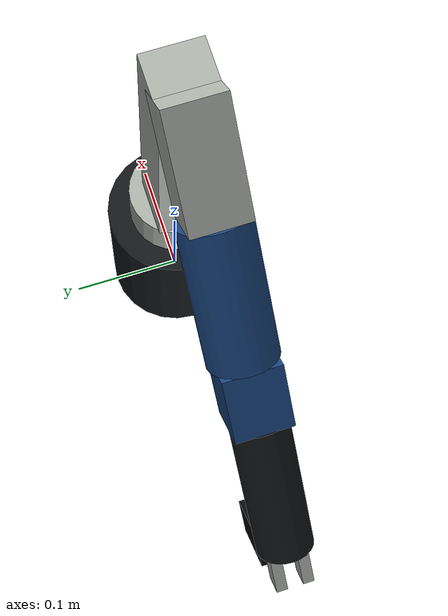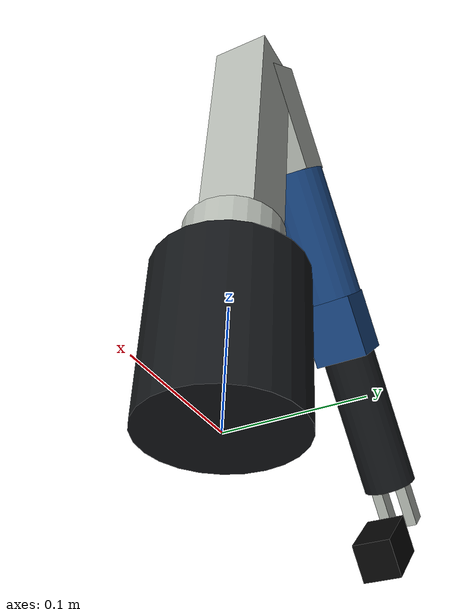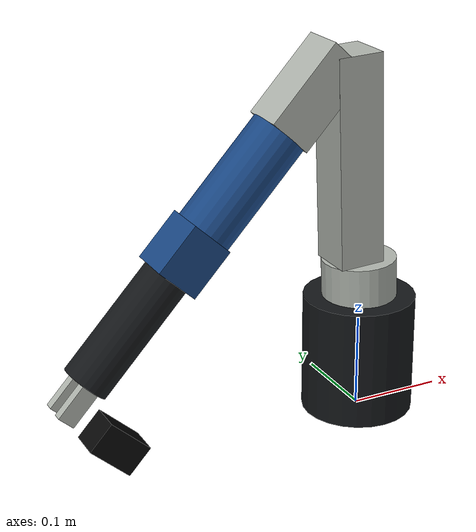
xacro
<?xml version="1.0"?>
<robot xmlns:xacro="http://www.ros.org/wiki/xacro" name="synria_6dof_arm">

  <xacro:include filename="$(find synria_arm_description)/urdf/synria_c10_camera.xacro"/>

  <!-- World frame for RViz and joint_state_publisher -->
  <link name="world"/>

  <joint name="world_to_base" type="fixed">
    <parent link="world"/>
    <child link="base_link"/>
    <origin xyz="0 0 0" rpy="0 0 0"/>
  </joint>

  <xacro:include filename="$(find synria_arm_description)/urdf/synria_6dof_arm.urdf"/>

  <!-- C10 wrist camera attached to the EE frame -->
  <xacro:synria_c10_camera parent="tool0" origin_xyz="0.070 0 0.035" origin_rpy="0 0 0"/>

  <ros2_control name="SynriaArmSystem" type="system">
    <hardware>
      <plugin>mock_components/GenericSystem</plugin>
    </hardware>

    <joint name="Joint1">
      <command_interface name="position"/>
      <state_interface name="position">
        <param name="initial_value">0.0</param>
      </state_interface>
      <state_interface name="velocity"/>
    </joint>
    <joint name="Joint2">
      <command_interface name="position"/>
      <state_interface name="position">
        <param name="initial_value">0.0</param>
      </state_interface>
      <state_interface name="velocity"/>
    </joint>
    <joint name="Joint3">
      <command_interface name="position"/>
      <state_interface name="position">
        <param name="initial_value">1.3</param>
      </state_interface>
      <state_interface name="velocity"/>
    </joint>
    <joint name="Joint4">
      <command_interface name="position"/>
      <state_interface name="position">
        <param name="initial_value">0.0</param>
      </state_interface>
      <state_interface name="velocity"/>
    </joint>
    <joint name="Joint5">
      <command_interface name="position"/>
      <state_interface name="position">
        <param name="initial_value">0.0</param>
      </state_interface>
      <state_interface name="velocity"/>
    </joint>
    <joint name="Joint6">
      <command_interface name="position"/>
      <state_interface name="position">
        <param name="initial_value">0.0</param>
      </state_interface>
      <state_interface name="velocity"/>
    </joint>

    <!-- Gripper fingers: prismatic, mock position control -->
    <joint name="left_finger">
      <command_interface name="position"/>
      <state_interface name="position">
        <param name="initial_value">0.025</param>
      </state_interface>
      <state_interface name="velocity"/>
    </joint>
    <joint name="right_finger">
      <command_interface name="position"/>
      <state_interface name="position">
        <param name="initial_value">-0.025</param>
      </state_interface>
      <state_interface name="velocity"/>
    </joint>
  </ros2_control>

</robot>

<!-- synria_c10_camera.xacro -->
<robot xmlns:xacro="http://www.ros.org/wiki/xacro">
  <xacro:macro name="synria_c10_camera" params="parent origin_xyz:='0 0 0' origin_rpy:='0 0 0'">
    <link name="c10_camera_link">
      <visual>
        <origin xyz="0 0 0" rpy="0 0 0"/>
        <geometry>
          <box size="0.055 0.035 0.035"/>
        </geometry>
        <material name="camera_black">
          <color rgba="0.03 0.03 0.03 1.0"/>
        </material>
      </visual>
      <collision>
        <origin xyz="0 0 0" rpy="0 0 0"/>
        <geometry>
          <box size="0.055 0.035 0.035"/>
        </geometry>
      </collision>
      <inertial>
        <origin xyz="0 0 0" rpy="0 0 0"/>
        <mass value="0.08"/>
        <inertia ixx="0.00002" ixy="0.0" ixz="0.0" iyy="0.00002" iyz="0.0" izz="0.00002"/>
      </inertial>
    </link>

    <joint name="c10_camera_fixed" type="fixed">
      <parent link="${parent}"/>
      <child link="c10_camera_link"/>
      <origin xyz="${origin_xyz}" rpy="${origin_rpy}"/>
    </joint>
  </xacro:macro>
</robot>

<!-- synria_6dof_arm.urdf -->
<robot name="synria_6dof_arm">

  <material name="synria_dark"><color rgba="0.08 0.09 0.10 1.0"/></material>
  <material name="synria_silver"><color rgba="0.70 0.72 0.69 1.0"/></material>
  <material name="synria_blue"><color rgba="0.10 0.28 0.52 1.0"/></material>

  <!-- base: cylinder up to the first joint, 0.1295 m above the mounting plane -->
  <link name="base_link">
    <visual><origin xyz="0 0 0.0648" rpy="0 0 0"/><geometry><cylinder radius="0.060" length="0.1295"/></geometry><material name="synria_dark"/></visual>
    <collision><origin xyz="0 0 0.0648" rpy="0 0 0"/><geometry><cylinder radius="0.060" length="0.1295"/></geometry></collision>
    <inertial><origin xyz="0 0 0.0648" rpy="0 0 0"/><mass value="1.0"/><inertia ixx="0.004" ixy="0" ixz="0" iyy="0.004" iyz="0" izz="0.002"/></inertial>
  </link>

  <!-- shoulder: short section between Joint1 and Joint2 -->
  <link name="link1">
    <visual><origin xyz="0 0 0.0214" rpy="0 0 0"/><geometry><cylinder radius="0.040" length="0.0428"/></geometry><material name="synria_silver"/></visual>
    <collision><origin xyz="0 0 0.0214" rpy="0 0 0"/><geometry><cylinder radius="0.040" length="0.0428"/></geometry></collision>
    <inertial><origin xyz="0 0 0.0214" rpy="0 0 0"/><mass value="0.40"/><inertia ixx="0.0003" ixy="0" ixz="0" iyy="0.0003" iyz="0" izz="0.0003"/></inertial>
  </link>

  <!-- upper arm: 0.224 m along the link's x axis to Joint3 -->
  <link name="link2">
    <visual><origin xyz="0.1118 0.0113 0" rpy="0 0 0"/><geometry><box size="0.2237 0.050 0.050"/></geometry><material name="synria_silver"/></visual>
    <collision><origin xyz="0.1118 0.0113 0" rpy="0 0 0"/><geometry><box size="0.2237 0.050 0.050"/></geometry></collision>
    <inertial><origin xyz="0.1118 0.0113 0" rpy="0 0 0"/><mass value="0.60"/><inertia ixx="0.0003" ixy="0" ixz="0" iyy="0.0026" iyz="0" izz="0.0026"/></inertial>
  </link>

  <!-- elbow: 0.099 m along the link's negative y axis to Joint4 -->
  <link name="link3">
    <visual><origin xyz="0.0011 -0.0495 0" rpy="0 0 0"/><geometry><box size="0.050 0.0990 0.050"/></geometry><material name="synria_silver"/></visual>
    <collision><origin xyz="0.0011 -0.0495 0" rpy="0 0 0"/><geometry><box size="0.050 0.0990 0.050"/></geometry></collision>
    <inertial><origin xyz="0.0011 -0.0495 0" rpy="0 0 0"/><mass value="0.35"/><inertia ixx="0.0004" ixy="0" ixz="0" iyy="0.0002" iyz="0" izz="0.0004"/></inertial>
  </link>

  <!-- forearm: 0.122 m along the link's z axis to Joint5 -->
  <link name="link4">
    <visual><origin xyz="0 -0.0003 0.0612" rpy="0 0 0"/><geometry><cylinder radius="0.030" length="0.1224"/></geometry><material name="synria_blue"/></visual>
    <collision><origin xyz="0 -0.0003 0.0612" rpy="0 0 0"/><geometry><cylinder radius="0.030" length="0.1224"/></geometry></collision>
    <inertial><origin xyz="0 -0.0003 0.0612" rpy="0 0 0"/><mass value="0.30"/><inertia ixx="0.0004" ixy="0" ixz="0" iyy="0.0004" iyz="0" izz="0.0001"/></inertial>
  </link>

  <!-- wrist: 0.0575 m along the link's y axis to Joint6 -->
  <link name="link5">
    <visual><origin xyz="-0.0019 0.0288 -0.0005" rpy="0 0 0"/><geometry><box size="0.050 0.0575 0.050"/></geometry><material name="synria_blue"/></visual>
    <collision><origin xyz="-0.0019 0.0288 -0.0005" rpy="0 0 0"/><geometry><box size="0.050 0.0575 0.050"/></geometry></collision>
    <inertial><origin xyz="-0.0019 0.0288 -0.0005" rpy="0 0 0"/><mass value="0.20"/><inertia ixx="0.0001" ixy="0" ixz="0" iyy="0.0001" iyz="0" izz="0.0001"/></inertial>
  </link>

  <!-- wrist roll and gripper body: 0.131 m along the link's z axis to the finger plane -->
  <link name="link6">
    <visual><origin xyz="0.0001 0 0.0655" rpy="0 0 0"/><geometry><cylinder radius="0.025" length="0.1310"/></geometry><material name="synria_dark"/></visual>
    <collision><origin xyz="0.0001 0 0.0655" rpy="0 0 0"/><geometry><cylinder radius="0.025" length="0.1310"/></geometry></collision>
    <inertial><origin xyz="0.0001 0 0.0655" rpy="0 0 0"/><mass value="0.25"/><inertia ixx="0.0004" ixy="0" ixz="0" iyy="0.0004" iyz="0" izz="0.0001"/></inertial>
  </link>

  <!-- end-effector frame at the finger plane -->
  <link name="tool0">
    <inertial><origin xyz="0 0 0" rpy="0 0 0"/><mass value="0.01"/><inertia ixx="0.00001" ixy="0" ixz="0" iyy="0.00001" iyz="0" izz="0.00001"/></inertial>
  </link>

  <link name="left_gripper">
    <visual><origin xyz="0 0.012 0.020" rpy="0 0 0"/><geometry><box size="0.020 0.010 0.040"/></geometry><material name="synria_silver"/></visual>
    <collision><origin xyz="0 0.012 0.020" rpy="0 0 0"/><geometry><box size="0.020 0.010 0.040"/></geometry></collision>
    <inertial><origin xyz="0 0.012 0.020" rpy="0 0 0"/><mass value="0.03"/><inertia ixx="0.00001" ixy="0" ixz="0" iyy="0.00001" iyz="0" izz="0.00001"/></inertial>
  </link>
  <link name="right_gripper">
    <visual><origin xyz="0 -0.012 0.020" rpy="0 0 0"/><geometry><box size="0.020 0.010 0.040"/></geometry><material name="synria_silver"/></visual>
    <collision><origin xyz="0 -0.012 0.020" rpy="0 0 0"/><geometry><box size="0.020 0.010 0.040"/></geometry></collision>
    <inertial><origin xyz="0 -0.012 0.020" rpy="0 0 0"/><mass value="0.03"/><inertia ixx="0.00001" ixy="0" ixz="0" iyy="0.00001" iyz="0" izz="0.00001"/></inertial>
  </link>

  <!-- arm joints: origins, axes and limits are the arm's kinematic parameters -->
  <joint name="Joint1" type="revolute">
    <parent link="base_link"/><child link="link1"/>
    <origin xyz="0 0 0.1295" rpy="0 -0.0398 0"/>
    <axis xyz="-0.0398 0 0.9992"/>
    <limit lower="-2.749" upper="2.749" effort="5" velocity="12"/>
  </joint>
  <joint name="Joint2" type="revolute">
    <parent link="link1"/><child link="link2"/>
    <origin xyz="0.0017 0 0.0428" rpy="1.5708 -1.5708 0"/>
    <axis xyz="0 0 -1"/>
    <limit lower="-1.57" upper="1.57" effort="5" velocity="12"/>
  </joint>
  <joint name="Joint3" type="revolute">
    <parent link="link2"/><child link="link3"/>
    <origin xyz="0.2237 0.0227 -0.0001" rpy="0 0 -2.3562"/>
    <axis xyz="0 0 -1"/>
    <limit lower="-0.78" upper="3.14159" effort="5" velocity="12"/>
  </joint>
  <joint name="Joint4" type="revolute">
    <parent link="link3"/><child link="link4"/>
    <origin xyz="0.0021 -0.0990 -0.0002" rpy="1.5708 0 0"/>
    <axis xyz="0 0 -1"/>
    <limit lower="-2.7925" upper="2.7925" effort="5" velocity="12"/>
  </joint>
  <joint name="Joint5" type="revolute">
    <parent link="link4"/><child link="link5"/>
    <origin xyz="0 -0.0005 0.12235" rpy="1.5708 0 0"/>
    <axis xyz="0 0 1"/>
    <limit lower="-1.57" upper="1.57" effort="5" velocity="12"/>
  </joint>
  <joint name="Joint6" type="revolute">
    <parent link="link5"/><child link="link6"/>
    <origin xyz="-0.0039 0.0575 -0.0010" rpy="-1.5708 0 0"/>
    <axis xyz="0 0 -1"/>
    <limit lower="-3.14" upper="3.14" effort="5" velocity="12"/>
  </joint>

  <joint name="tool0_fixed_joint" type="fixed">
    <parent link="link6"/><child link="tool0"/>
    <origin xyz="0.0002 0 0.13098" rpy="0 0 0"/>
  </joint>
  <joint name="left_finger" type="prismatic">
    <parent link="link6"/><child link="left_gripper"/>
    <origin xyz="0.0002 0 0.13098" rpy="0 0 0"/>
    <axis xyz="0 1 0"/>
    <limit lower="0" upper="0.025" effort="5" velocity="0.1"/>
  </joint>
  <joint name="right_finger" type="prismatic">
    <parent link="link6"/><child link="right_gripper"/>
    <origin xyz="0.0002 0 0.13098" rpy="0 0 0"/>
    <axis xyz="0 1 0"/>
    <limit lower="-0.025" upper="0" effort="5" velocity="0.1"/>
  </joint>
</robot>
